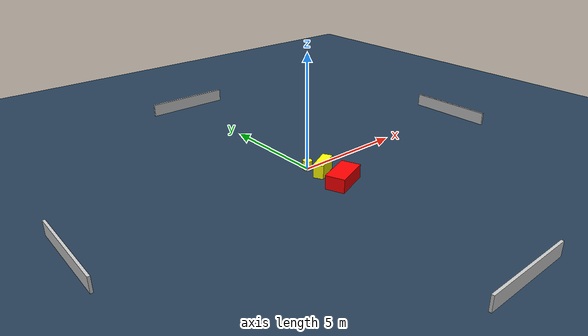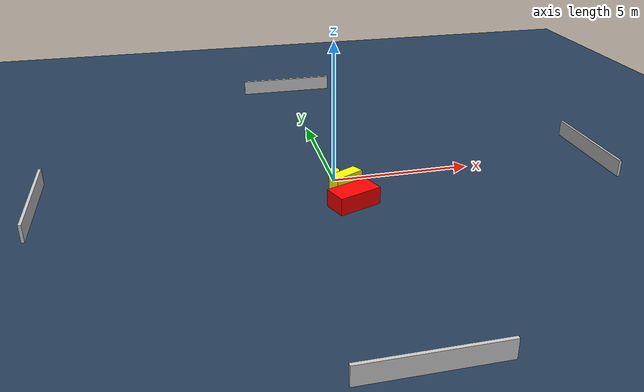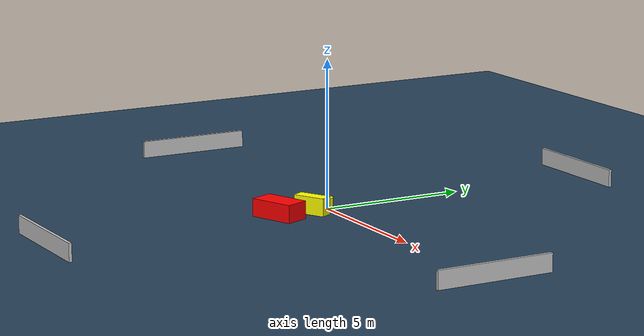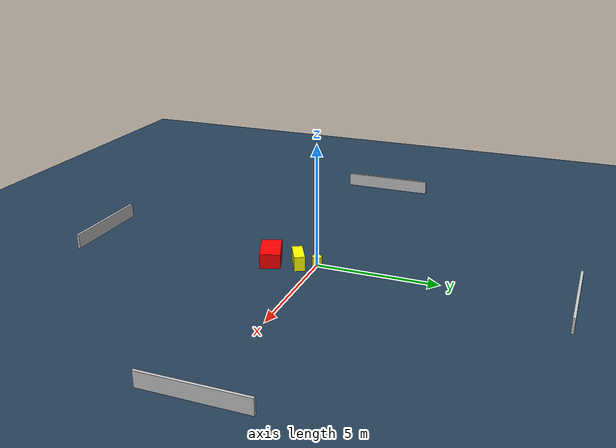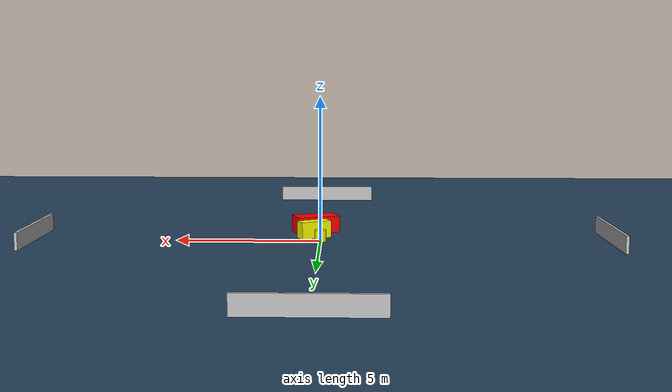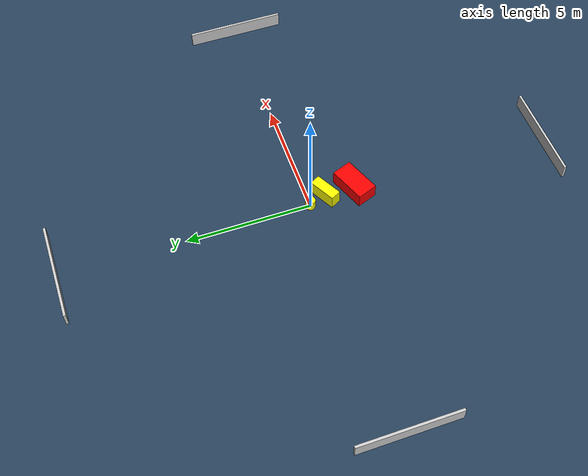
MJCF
<?xml version="1.0" ?>
<mujoco model="generated_environment">
  <option timestep="0.01" integrator="RK4" cone="elliptic"/>
  <default>
    <geom density="1"/>
  </default>
  <asset>
    <texture builtin="gradient" height="3072" name="skybox" rgb1="0.3 0.5 0.7" rgb2="0 0 0" type="skybox" width="512"/>
    <texture builtin="checker" height="300" name="groundplane" rgb1="0.2 0.3 0.4" rgb2="0.1 0.2 0.3" type="2d" width="300"/>
    <material name="groundplane" reflectance="0.2" texrepeat="5 5" texture="groundplane"/>
  </asset>
  <worldbody>
    <light dir="0 0 -1" directional="true" pos="0 0 1.5"/>
    <geom condim="3" friction="0.5 0.005 0.001" material="groundplane" name="floor" pos="0 0 0" size="0 0 0.05" type="plane"/>
    <body name="walls">
      <geom name="wall_1" condim="4" pos="-10.0 0.0 0.3" rgba="0.800000011920929 0.800000011920929 0.800000011920929 1.0" size="0.05 2.0 0.3" type="box"/>
      <geom name="wall_2" condim="4" pos="10.0 0.0 0.3" rgba="0.800000011920929 0.800000011920929 0.800000011920929 1.0" size="0.05 2.0 0.3" type="box"/>
      <geom name="wall_3" condim="4" pos="0.0 -10.0 0.3" rgba="0.800000011920929 0.800000011920929 0.800000011920929 1.0" size="2.0 0.05 0.3" type="box"/>
      <geom name="wall_4" condim="4" pos="0.0 10.0 0.3" rgba="0.800000011920929 0.800000011920929 0.800000011920929 1.0" size="2.0 0.05 0.3" type="box"/>
    </body>
    <body name="robot">
      <joint name="joint_x" type="slide" pos="0 0 0" axis="1 0 0"/>
      <joint name="joint_y" type="slide" pos="0 0 0" axis="0 1 0"/>
      <geom name="robot" type="cylinder" pos="0.0 0.0 0.2" size="0.2 0.2 0.0" mass="5.0" friction="1.0 0.005 0.0001" condim="4" rgba="1.0 1.0 0.0 1.0"/>
    </body>
    <body name="obstacle_1_movable">
      <geom name="obstacle_1_movable" condim="4" pos="0.24743196301292786 -0.7054599705824627 0.3" euler="0 0 117.83386562438245" friction="0.0 0.005 0.001" rgba="1.0 1.0 0.0 1.0" size="0.21965492615501395 0.5645772435385367 0.3" type="box" mass="0.1"/>
      <joint type="free"/>
    </body>
    <body name="obstacle_2_static">
      <geom name="obstacle_2_static" condim="4" pos="0.2269203068468388 -1.9138685892477127 0.3" euler="0 0 110.96473204183248" friction="0.0 0.005 0.001" rgba="1.0 0.0 0.0 1.0" size="0.41804606576480724 0.7748780416598688 0.3" type="box"/>
    </body>
  </worldbody>
  <actuator>
    <motor name="actuator_x" joint="joint_x" gear="1" ctrlrange="-1 1"/>
    <motor name="actuator_y" joint="joint_y" gear="1" ctrlrange="-1 1"/>
  </actuator>
</mujoco>
